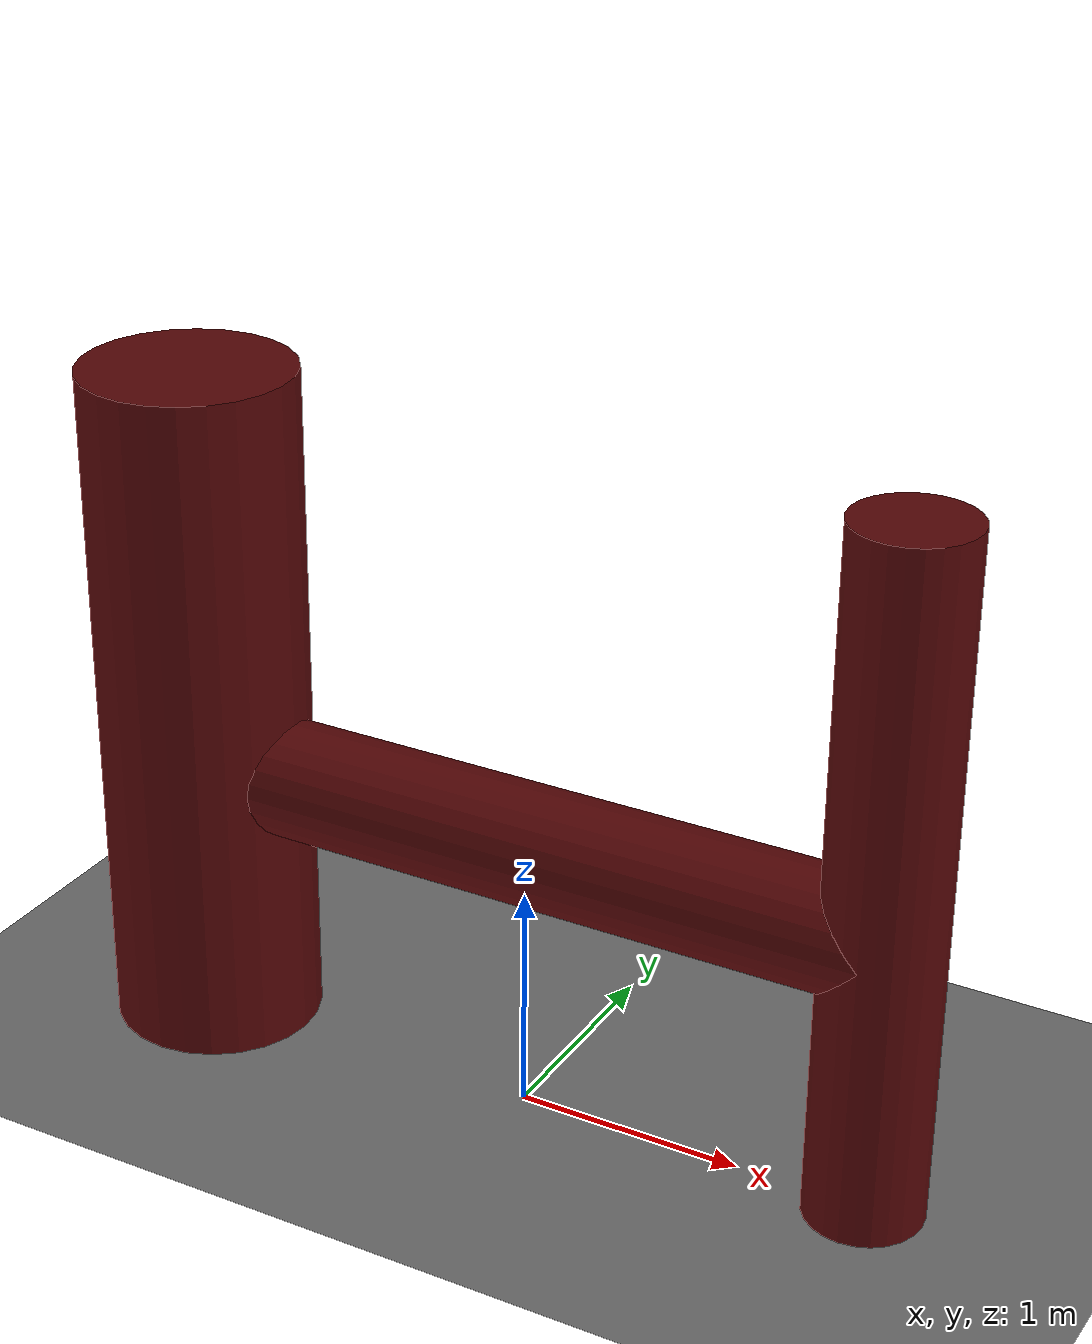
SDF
<?xml version="1.0" ?>
<sdf version="1.8">
  <world name="experimental_polygon_test">
    <gravity>0 0 -9.8</gravity>
    <physics name="1ms" type="ode">
      <max_step_size>0.001</max_step_size>
      <real_time_update_rate>1000</real_time_update_rate>
      <real_time_factor>1.0</real_time_factor>
      <ode>
        <solver>
          <type>quick</type>
          <iters>250</iters>
          <sor>1.3</sor>
        </solver>
        <constraints>
          <cfm>0.0</cfm>
          <erp>0.2</erp>
          <contact_max_correcting_vel>0.01</contact_max_correcting_vel>
          <contact_surface_layer>0.0001</contact_surface_layer>
        </constraints>
      </ode>
    </physics>

    <plugin filename="gz-sim-physics-system" name="gz::sim::systems::Physics"/>
    <plugin filename="gz-sim-user-commands-system" name="gz::sim::systems::UserCommands"/>
    <plugin filename="gz-sim-apply-link-wrench-system" name="gz::sim::systems::ApplyLinkWrench"/>
    <plugin filename="gz-sim-contact-system" name="gz::sim::systems::Contact"/>
    <plugin filename="gz-sim-scene-broadcaster-system" name="gz::sim::systems::SceneBroadcaster"/>

    <light type="directional" name="sun">
      <cast_shadows>true</cast_shadows>
      <pose>0 0 10 0 0 0</pose>
      <diffuse>0.8 0.8 0.8 1</diffuse>
      <specular>0.2 0.2 0.2 1</specular>
      <direction>-0.45 0.20 -0.90</direction>
    </light>

    <model name="ground_plane">
      <static>true</static>
      <link name="link">
        <collision name="collision">
          <geometry><plane><normal>0 0 1</normal></plane></geometry>
          <surface>
            <friction>
              <ode>
                <mu>1.0</mu>
                <mu2>1.0</mu2>
              </ode>
            </friction>
          </surface>
        </collision>
        <visual name="visual">
          <geometry><plane><normal>0 0 1</normal><size>6 4</size></plane></geometry>
          <material>
            <ambient>0.42 0.42 0.42 1</ambient>
            <diffuse>0.42 0.42 0.42 1</diffuse>
          </material>
        </visual>
      </link>
    </model>

    <include>
      <uri>model://experimental_polygon</uri>
      <pose>0 0 0 0 0 0</pose>
    </include>
  </world>
</sdf>

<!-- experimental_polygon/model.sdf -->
<sdf version="1.8">
  <model name="experimental_polygon">
    <static>true</static>

    <link name="structure_link">
      <collision name="left_vertical_pipe_collision">
        <pose>-1.5656 0 1.5000 0 0 0</pose>
        <geometry><cylinder><radius>0.4572</radius><length>3.0000</length></cylinder></geometry>
        <surface>
          <friction><ode><mu>1.6</mu><mu2>1.6</mu2></ode></friction>
          <contact><ode><kp>250000</kp><kd>80</kd><max_vel>0.20</max_vel><min_depth>0.006</min_depth></ode></contact>
        </surface>
      </collision>

      <collision name="right_vertical_pipe_collision">
        <pose>1.5656 0 1.5000 0 0 0</pose>
        <geometry><cylinder><radius>0.2540</radius><length>3.0000</length></cylinder></geometry>
        <surface>
          <friction><ode><mu>1.6</mu><mu2>1.6</mu2></ode></friction>
          <contact><ode><kp>250000</kp><kd>80</kd><max_vel>0.20</max_vel><min_depth>0.006</min_depth></ode></contact>
        </surface>
      </collision>

      <collision name="horizontal_pipe_collision">
        <pose>0.0000 0 1.2460 0 1.57079632679 0</pose>
        <geometry><cylinder><radius>0.2540</radius><length>3.1312</length></cylinder></geometry>
        <surface>
          <friction><ode><mu>1.6</mu><mu2>1.6</mu2></ode></friction>
          <contact><ode><kp>250000</kp><kd>80</kd><max_vel>0.20</max_vel><min_depth>0.006</min_depth></ode></contact>
        </surface>
      </collision>

      <visual name="left_vertical_pipe_visual">
        <pose>-1.5656 0 1.5000 0 0 0</pose>
        <geometry><cylinder><radius>0.4572</radius><length>3.0000</length></cylinder></geometry>
        <material>
          <ambient>0.24 0.015 0.018 1</ambient>
          <diffuse>0.34 0.025 0.030 1</diffuse>
          <specular>0.18 0.18 0.18 1</specular>
        </material>
      </visual>

      <visual name="right_vertical_pipe_visual">
        <pose>1.5656 0 1.5000 0 0 0</pose>
        <geometry><cylinder><radius>0.2540</radius><length>3.0000</length></cylinder></geometry>
        <material>
          <ambient>0.24 0.015 0.018 1</ambient>
          <diffuse>0.34 0.025 0.030 1</diffuse>
          <specular>0.18 0.18 0.18 1</specular>
        </material>
      </visual>

      <visual name="horizontal_pipe_visual">
        <pose>0.0000 0 1.2460 0 1.57079632679 0</pose>
        <geometry><cylinder><radius>0.2540</radius><length>3.1312</length></cylinder></geometry>
        <material>
          <ambient>0.24 0.015 0.018 1</ambient>
          <diffuse>0.34 0.025 0.030 1</diffuse>
          <specular>0.18 0.18 0.18 1</specular>
        </material>
      </visual>
    </link>
  </model>
</sdf>
